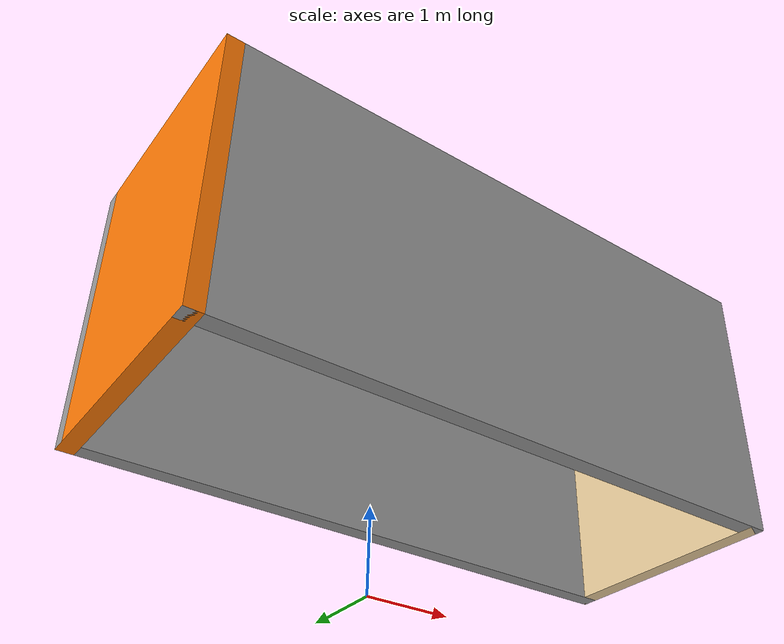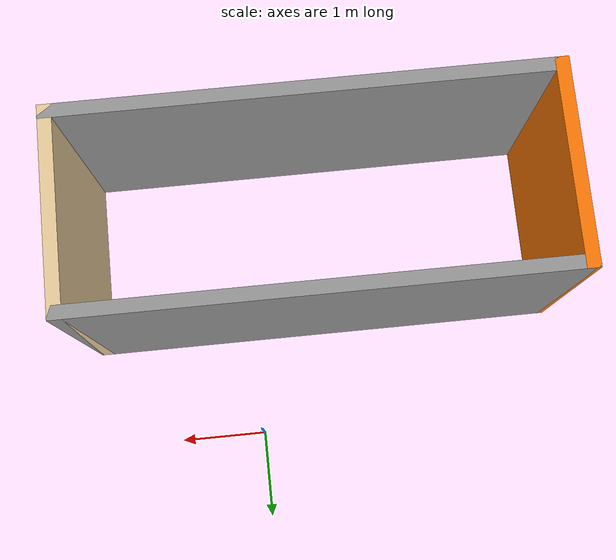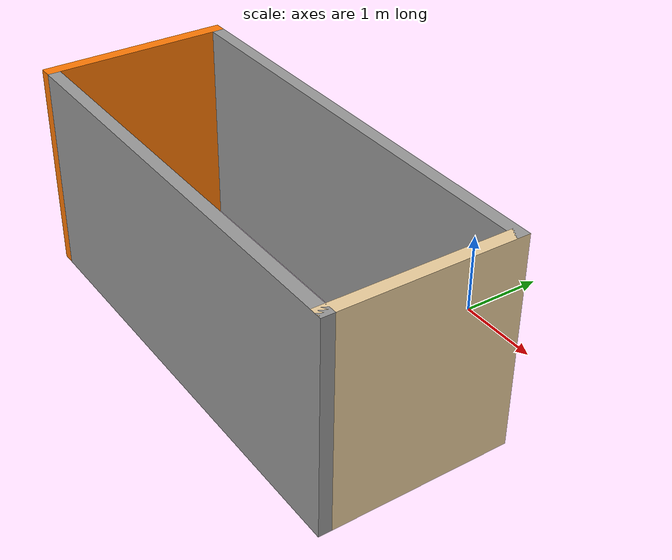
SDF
<?xml version='1.0'?>
<sdf version='1.7'>
  <model name='Untitled'>
    <pose>-0.825 -1.6975 0 0 -0 0</pose>
    <link name='Wall_0'>
      <collision name='Wall_0_Collision'>
        <geometry>
          <box>
            <size>2.25 0.15 2.5</size>
          </box>
        </geometry>
        <pose>0 0 1.25 0 -0 0</pose>
      </collision>
      <visual name='Wall_0_Visual'>
        <pose>0 0 1.25 0 -0 0</pose>
        <geometry>
          <box>
            <size>2.25 0.15 2.5</size>
          </box>
        </geometry>
        <material>
          <script>
            <uri>file://media/materials/scripts/gazebo.material</uri>
            <name>Gazebo/Grey</name>
          </script>
          <ambient>0.996078 0.47451 0.0196078 1</ambient>
        </material>
        <meta>
          <layer>0</layer>
        </meta>
      </visual>
      <pose>-2.675 -0.5725 0 0 -0 -1.5708</pose>
    </link>
    <link name='Wall_2'>
      <collision name='Wall_2_Collision'>
        <geometry>
          <box>
            <size>5.5 0.15 2.5</size>
          </box>
        </geometry>
        <pose>0 0 1.25 0 -0 0</pose>
      </collision>
      <visual name='Wall_2_Visual'>
        <pose>0 0 1.25 0 -0 0</pose>
        <geometry>
          <box>
            <size>5.5 0.15 2.5</size>
          </box>
        </geometry>
        <material>
          <script>
            <uri>file://media/materials/scripts/gazebo.material</uri>
            <name>Gazebo/Grey</name>
          </script>
          <ambient>1 1 1 1</ambient>
        </material>
        <meta>
          <layer>0</layer>
        </meta>
      </visual>
      <pose>-0 0.4775 0 0 -0 0</pose>
    </link>
    <link name='Wall_3'>
      <collision name='Wall_3_Collision'>
        <geometry>
          <box>
            <size>2.25 0.15 2.5</size>
          </box>
        </geometry>
        <pose>0 0 1.25 0 -0 0</pose>
      </collision>
      <visual name='Wall_3_Visual'>
        <pose>0 0 1.25 0 -0 0</pose>
        <geometry>
          <box>
            <size>2.25 0.15 2.5</size>
          </box>
        </geometry>
        <material>
          <script>
            <uri>file://media/materials/scripts/gazebo.material</uri>
            <name>Gazebo/Grey</name>
          </script>
          <ambient>0.921569 0.807843 0.615686 1</ambient>
        </material>
        <meta>
          <layer>0</layer>
        </meta>
      </visual>
      <pose>2.675 -0.5725 0 0 -0 -1.5708</pose>
    </link>
    <link name='Wall_4'>
      <collision name='Wall_4_Collision'>
        <geometry>
          <box>
            <size>5.5 0.15 2.5</size>
          </box>
        </geometry>
        <pose>0 0 1.25 0 -0 0</pose>
      </collision>
      <visual name='Wall_4_Visual'>
        <pose>0 0 1.25 0 -0 0</pose>
        <geometry>
          <box>
            <size>5.5 0.15 2.5</size>
          </box>
        </geometry>
        <material>
          <script>
            <uri>file://media/materials/scripts/gazebo.material</uri>
            <name>Gazebo/Grey</name>
          </script>
          <ambient>1 1 1 1</ambient>
        </material>
        <meta>
          <layer>0</layer>
        </meta>
      </visual>
      <pose>-0 -1.6225 0 0 -0 3.14159</pose>
    </link>
    <static>1</static>
  </model>
</sdf>
